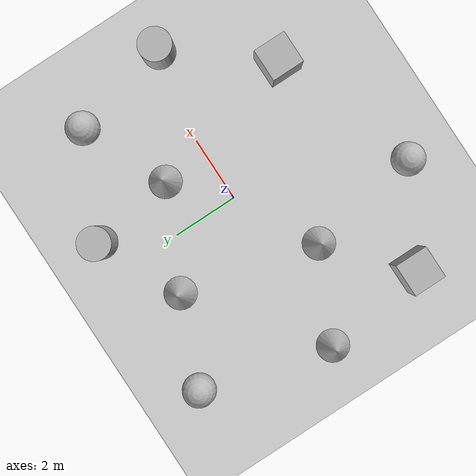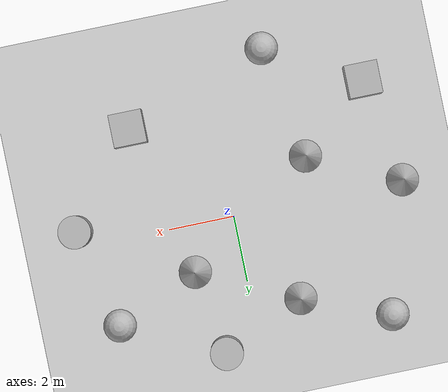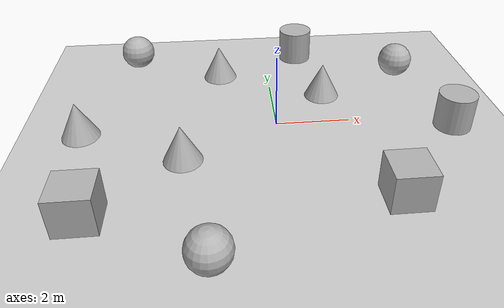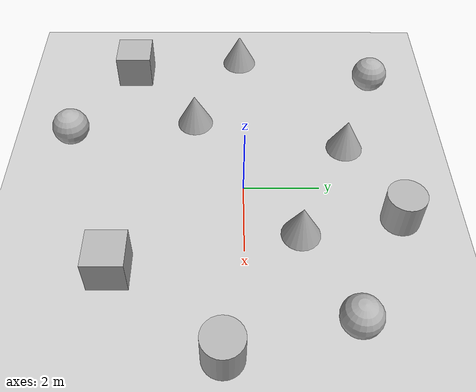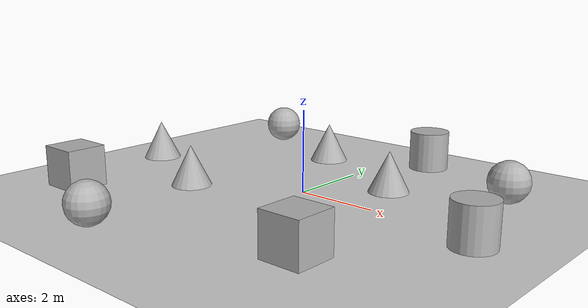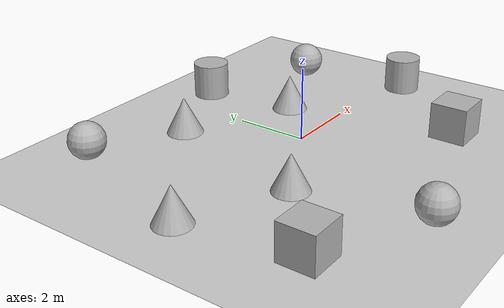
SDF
<?xml version="1.0"?>
<sdf version='1.10'>
  <world name='empty'>
    <physics name='1ms' type='ignored'>
      <max_step_size>0.001</max_step_size>
      <real_time_factor>1</real_time_factor>
      <real_time_update_rate>1000</real_time_update_rate>
    </physics>
    <plugin name='gz::sim::systems::Physics' filename='gz-sim-physics-system'/>
    <plugin name='gz::sim::systems::UserCommands' filename='gz-sim-user-commands-system'/>
    <plugin name='gz::sim::systems::SceneBroadcaster' filename='gz-sim-scene-broadcaster-system'/>
    <plugin name='gz::sim::systems::Contact' filename='gz-sim-contact-system'/>
    <plugin name='gz::sim::systems::Sensors' filename='gz-sim-sensors-system'>
      <render_engine>ogre2</render_engine>
    </plugin>
    <plugin name="gz::sim::systems::Imu" filename="gz-sim-imu-system" />
    <gravity>0 0 -9.8000000000000007</gravity>
    <magnetic_field>5.5644999999999998e-06 2.2875799999999999e-05 -4.2388400000000002e-05</magnetic_field>
    <atmosphere type='adiabatic'/>
    <scene>
      <ambient>0.400000006 0.400000006 0.400000006 1</ambient>
      <background>0.699999988 0.699999988 0.699999988 1</background>
      <shadows>true</shadows>
    </scene>
    <model name='ground_plane'>
      <static>true</static>
      <link name='link'>
        <collision name='collision'>
          <geometry>
            <plane>
              <normal>0 0 1</normal>
              <size>100 100</size>
            </plane>
          </geometry>
          <surface>
            <friction>
              <ode/>
            </friction>
            <bounce/>
            <contact/>
          </surface>
        </collision>
        <visual name='visual'>
          <geometry>
            <plane>
              <normal>0 0 1</normal>
              <size>100 100</size>
            </plane>
          </geometry>
          <material>
            <ambient>0.800000012 0.800000012 0.800000012 1</ambient>
            <diffuse>0.800000012 0.800000012 0.800000012 1</diffuse>
            <specular>0.800000012 0.800000012 0.800000012 1</specular>
          </material>
        </visual>
        <pose>0 0 0 0 0 0</pose>
        <inertial>
          <pose>0 0 0 0 0 0</pose>
          <mass>1</mass>
          <inertia>
            <ixx>1</ixx>
            <ixy>0</ixy>
            <ixz>0</ixz>
            <iyy>1</iyy>
            <iyz>0</iyz>
            <izz>1</izz>
          </inertia>
        </inertial>
        <enable_wind>false</enable_wind>
      </link>
      <pose>0 0 0 0 0 0</pose>
      <self_collide>false</self_collide>
    </model>
    <model name='cone_0'>
      <pose>1.4892225991940389 1.4110132482823996 0.5 0 0 0</pose>
      <link name='cone_link'>
        <inertial>
          <inertia>
            <ixx>0.074999999999999997</ixx>
            <ixy>0</ixy>
            <ixz>0</ixz>
            <iyy>0.074999999999999997</iyy>
            <iyz>0</iyz>
            <izz>0.074999999999999997</izz>
          </inertia>
          <mass>1</mass>
          <pose>0 0 0 0 0 0</pose>
        </inertial>
        <collision name='cone_collision'>
          <geometry>
            <cone>
              <radius>0.5</radius>
              <length>1</length>
            </cone>
          </geometry>
          <surface>
            <friction>
              <ode/>
            </friction>
            <bounce/>
            <contact/>
          </surface>
        </collision>
        <visual name='cone_visual'>
          <geometry>
            <cone>
              <radius>0.5</radius>
              <length>1</length>
            </cone>
          </geometry>
          <material>
            <ambient>0.300000012 0.300000012 0.300000012 1</ambient>
            <diffuse>0.699999988 0.699999988 0.699999988 1</diffuse>
            <specular>1 1 1 1</specular>
          </material>
        </visual>
        <pose>0 0 0 0 0 0</pose>
        <enable_wind>false</enable_wind>
      </link>
      <static>false</static>
      <self_collide>false</self_collide>
    </model>
    <model name='cylinder'>
      <pose>4.7533978697758705 -0.50476045100361344 0.5 0 0 0</pose>
      <link name='cylinder_link'>
        <inertial>
          <inertia>
            <ixx>0.14580000000000001</ixx>
            <ixy>0</ixy>
            <ixz>0</ixz>
            <iyy>0.14580000000000001</iyy>
            <iyz>0</iyz>
            <izz>0.125</izz>
          </inertia>
          <mass>1</mass>
          <pose>0 0 0 0 0 0</pose>
        </inertial>
        <collision name='cylinder_collision'>
          <geometry>
            <cylinder>
              <radius>0.5</radius>
              <length>1</length>
            </cylinder>
          </geometry>
          <surface>
            <friction>
              <ode/>
            </friction>
            <bounce/>
            <contact/>
          </surface>
        </collision>
        <visual name='cylinder_visual'>
          <geometry>
            <cylinder>
              <radius>0.5</radius>
              <length>1</length>
            </cylinder>
          </geometry>
          <material>
            <ambient>0.300000012 0.300000012 0.300000012 1</ambient>
            <diffuse>0.699999988 0.699999988 0.699999988 1</diffuse>
            <specular>1 1 1 1</specular>
          </material>
        </visual>
        <pose>0 0 0 0 0 0</pose>
        <enable_wind>false</enable_wind>
      </link>
      <static>false</static>
      <self_collide>false</self_collide>
    </model>
    <model name='box'>
      <pose>2.5788527549479463 -3.2161412418514304 0.5 0 0 0</pose>
      <link name='box_link'>
        <inertial>
          <inertia>
            <ixx>0.16666</ixx>
            <ixy>0</ixy>
            <ixz>0</ixz>
            <iyy>0.16666</iyy>
            <iyz>0</iyz>
            <izz>0.16666</izz>
          </inertia>
          <mass>1</mass>
          <pose>0 0 0 0 0 0</pose>
        </inertial>
        <collision name='box_collision'>
          <geometry>
            <box>
              <size>1 1 1</size>
            </box>
          </geometry>
          <surface>
            <friction>
              <ode/>
            </friction>
            <bounce/>
            <contact/>
          </surface>
        </collision>
        <visual name='box_visual'>
          <geometry>
            <box>
              <size>1 1 1</size>
            </box>
          </geometry>
          <material>
            <ambient>0.300000012 0.300000012 0.300000012 1</ambient>
            <diffuse>0.699999988 0.699999988 0.699999988 1</diffuse>
            <specular>1 1 1 1</specular>
          </material>
        </visual>
        <pose>0 0 0 0 0 0</pose>
        <enable_wind>false</enable_wind>
      </link>
      <static>false</static>
      <self_collide>false</self_collide>
    </model>
    <model name='cone_1'>
      <pose>-1.4729632290940655 2.8299608996442025 0.5 0 0 0</pose>
      <link name='cone_link'>
        <inertial>
          <inertia>
            <ixx>0.074999999999999997</ixx>
            <ixy>0</ixy>
            <ixz>0</ixz>
            <iyy>0.074999999999999997</iyy>
            <iyz>0</iyz>
            <izz>0.074999999999999997</izz>
          </inertia>
          <mass>1</mass>
          <pose>0 0 0 0 0 0</pose>
        </inertial>
        <collision name='cone_collision'>
          <geometry>
            <cone>
              <radius>0.5</radius>
              <length>1</length>
            </cone>
          </geometry>
          <surface>
            <friction>
              <ode/>
            </friction>
            <bounce/>
            <contact/>
          </surface>
        </collision>
        <visual name='cone_visual'>
          <geometry>
            <cone>
              <radius>0.5</radius>
              <length>1</length>
            </cone>
          </geometry>
          <material>
            <ambient>0.300000012 0.300000012 0.300000012 1</ambient>
            <diffuse>0.699999988 0.699999988 0.699999988 1</diffuse>
            <specular>1 1 1 1</specular>
          </material>
        </visual>
        <pose>0 0 0 0 0 0</pose>
        <enable_wind>false</enable_wind>
      </link>
      <static>false</static>
      <self_collide>false</self_collide>
    </model>
    <model name='cylinder_0'>
      <pose>1.0358530314582408 3.956710407944521 0.5 0 0 0</pose>
      <link name='cylinder_link'>
        <inertial>
          <inertia>
            <ixx>0.14580000000000001</ixx>
            <ixy>0</ixy>
            <ixz>0</ixz>
            <iyy>0.14580000000000001</iyy>
            <iyz>0</iyz>
            <izz>0.125</izz>
          </inertia>
          <mass>1</mass>
          <pose>0 0 0 0 0 0</pose>
        </inertial>
        <collision name='cylinder_collision'>
          <geometry>
            <cylinder>
              <radius>0.5</radius>
              <length>1</length>
            </cylinder>
          </geometry>
          <surface>
            <friction>
              <ode/>
            </friction>
            <bounce/>
            <contact/>
          </surface>
        </collision>
        <visual name='cylinder_visual'>
          <geometry>
            <cylinder>
              <radius>0.5</radius>
              <length>1</length>
            </cylinder>
          </geometry>
          <material>
            <ambient>0.300000012 0.300000012 0.300000012 1</ambient>
            <diffuse>0.699999988 0.699999988 0.699999988 1</diffuse>
            <specular>1 1 1 1</specular>
          </material>
        </visual>
        <pose>0 0 0 0 0 0</pose>
        <enable_wind>false</enable_wind>
      </link>
      <static>false</static>
      <self_collide>false</self_collide>
    </model>
    <model name='sphere'>
      <pose>4.0093762555568961 2.5139623369504136 0.5 0 0 0</pose>
      <link name='sphere_link'>
        <inertial>
          <inertia>
            <ixx>0.10000000000000001</ixx>
            <ixy>0</ixy>
            <ixz>0</ixz>
            <iyy>0.10000000000000001</iyy>
            <iyz>0</iyz>
            <izz>0.10000000000000001</izz>
          </inertia>
          <mass>1</mass>
          <pose>0 0 0 0 0 0</pose>
        </inertial>
        <collision name='sphere_collision'>
          <geometry>
            <sphere>
              <radius>0.5</radius>
            </sphere>
          </geometry>
          <surface>
            <friction>
              <ode/>
            </friction>
            <bounce/>
            <contact/>
          </surface>
        </collision>
        <visual name='sphere_visual'>
          <geometry>
            <sphere>
              <radius>0.5</radius>
            </sphere>
          </geometry>
          <material>
            <ambient>0.300000012 0.300000012 0.300000012 1</ambient>
            <diffuse>0.699999988 0.699999988 0.699999988 1</diffuse>
            <specular>1 1 1 1</specular>
          </material>
        </visual>
        <pose>0 0 0 0 0 0</pose>
        <enable_wind>false</enable_wind>
      </link>
      <static>false</static>
      <self_collide>false</self_collide>
    </model>
    <model name='sphere_0'>
      <pose>-1.8184964500784719 -4.7755457018767107 0.5 0 0 0</pose>
      <link name='sphere_link'>
        <inertial>
          <inertia>
            <ixx>0.10000000000000001</ixx>
            <ixy>0</ixy>
            <ixz>0</ixz>
            <iyy>0.10000000000000001</iyy>
            <iyz>0</iyz>
            <izz>0.10000000000000001</izz>
          </inertia>
          <mass>1</mass>
          <pose>0 0 0 0 0 0</pose>
        </inertial>
        <collision name='sphere_collision'>
          <geometry>
            <sphere>
              <radius>0.5</radius>
            </sphere>
          </geometry>
          <surface>
            <friction>
              <ode/>
            </friction>
            <bounce/>
            <contact/>
          </surface>
        </collision>
        <visual name='sphere_visual'>
          <geometry>
            <sphere>
              <radius>0.5</radius>
            </sphere>
          </geometry>
          <material>
            <ambient>0.300000012 0.300000012 0.300000012 1</ambient>
            <diffuse>0.699999988 0.699999988 0.699999988 1</diffuse>
            <specular>1 1 1 1</specular>
          </material>
        </visual>
        <pose>0 0 0 0 0 0</pose>
        <enable_wind>false</enable_wind>
      </link>
      <static>false</static>
      <self_collide>false</self_collide>
    </model>
    <model name='cone_2'>
      <pose>-5.2009088281344553 -0.057861801403633284 0.5 0 0 0</pose>
      <link name='cone_link'>
        <inertial>
          <inertia>
            <ixx>0.074999999999999997</ixx>
            <ixy>0</ixy>
            <ixz>0</ixz>
            <iyy>0.074999999999999997</iyy>
            <iyz>0</iyz>
            <izz>0.074999999999999997</izz>
          </inertia>
          <mass>1</mass>
          <pose>0 0 0 0 0 0</pose>
        </inertial>
        <collision name='cone_collision'>
          <geometry>
            <cone>
              <radius>0.5</radius>
              <length>1</length>
            </cone>
          </geometry>
          <surface>
            <friction>
              <ode/>
            </friction>
            <bounce/>
            <contact/>
          </surface>
        </collision>
        <visual name='cone_visual'>
          <geometry>
            <cone>
              <radius>0.5</radius>
              <length>1</length>
            </cone>
          </geometry>
          <material>
            <ambient>0.300000012 0.300000012 0.300000012 1</ambient>
            <diffuse>0.699999988 0.699999988 0.699999988 1</diffuse>
            <specular>1 1 1 1</specular>
          </material>
        </visual>
        <pose>0 0 0 0 0 0</pose>
        <enable_wind>false</enable_wind>
      </link>
      <static>false</static>
      <self_collide>false</self_collide>
    </model>
    <model name='sphere_1'>
      <pose>-4.0679332685200169 3.8314126410691602 0.5 0 0 0</pose>
      <link name='sphere_link'>
        <inertial>
          <inertia>
            <ixx>0.10000000000000001</ixx>
            <ixy>0</ixy>
            <ixz>0</ixz>
            <iyy>0.10000000000000001</iyy>
            <iyz>0</iyz>
            <izz>0.10000000000000001</izz>
          </inertia>
          <mass>1</mass>
          <pose>0 0 0 0 0 0</pose>
        </inertial>
        <collision name='sphere_collision'>
          <geometry>
            <sphere>
              <radius>0.5</radius>
            </sphere>
          </geometry>
          <surface>
            <friction>
              <ode/>
            </friction>
            <bounce/>
            <contact/>
          </surface>
        </collision>
        <visual name='sphere_visual'>
          <geometry>
            <sphere>
              <radius>0.5</radius>
            </sphere>
          </geometry>
          <material>
            <ambient>0.300000012 0.300000012 0.300000012 1</ambient>
            <diffuse>0.699999988 0.699999988 0.699999988 1</diffuse>
            <specular>1 1 1 1</specular>
          </material>
        </visual>
        <pose>0 0 0 0 0 0</pose>
        <enable_wind>false</enable_wind>
      </link>
      <static>false</static>
      <self_collide>false</self_collide>
    </model>
    <model name='box_0'>
      <pose>-4.6008222069259093 -3.2306169773737312 0.5 0 0 0</pose>
      <link name='box_link'>
        <inertial>
          <inertia>
            <ixx>0.16666</ixx>
            <ixy>0</ixy>
            <ixz>0</ixz>
            <iyy>0.16666</iyy>
            <iyz>0</iyz>
            <izz>0.16666</izz>
          </inertia>
          <mass>1</mass>
          <pose>0 0 0 0 0 0</pose>
        </inertial>
        <collision name='box_collision'>
          <geometry>
            <box>
              <size>1 1 1</size>
            </box>
          </geometry>
          <surface>
            <friction>
              <ode/>
            </friction>
            <bounce/>
            <contact/>
          </surface>
        </collision>
        <visual name='box_visual'>
          <geometry>
            <box>
              <size>1 1 1</size>
            </box>
          </geometry>
          <material>
            <ambient>0.300000012 0.300000012 0.300000012 1</ambient>
            <diffuse>0.699999988 0.699999988 0.699999988 1</diffuse>
            <specular>1 1 1 1</specular>
          </material>
        </visual>
        <pose>0 0 0 0 0 0</pose>
        <enable_wind>false</enable_wind>
      </link>
      <static>false</static>
      <self_collide>false</self_collide>
    </model>
    <model name='cone_3'>
      <pose>-2.4775798994115306 -1.3521498904451508 0.5 0 0 0</pose>
      <link name='cone_link'>
        <inertial>
          <inertia>
            <ixx>0.074999999999999997</ixx>
            <ixy>0</ixy>
            <ixz>0</ixz>
            <iyy>0.074999999999999997</iyy>
            <iyz>0</iyz>
            <izz>0.074999999999999997</izz>
          </inertia>
          <mass>1</mass>
          <pose>0 0 0 0 0 0</pose>
        </inertial>
        <collision name='cone_collision'>
          <geometry>
            <cone>
              <radius>0.5</radius>
              <length>1</length>
            </cone>
          </geometry>
          <surface>
            <friction>
              <ode/>
            </friction>
            <bounce/>
            <contact/>
          </surface>
        </collision>
        <visual name='cone_visual'>
          <geometry>
            <cone>
              <radius>0.5</radius>
              <length>1</length>
            </cone>
          </geometry>
          <material>
            <ambient>0.300000012 0.300000012 0.300000012 1</ambient>
            <diffuse>0.699999988 0.699999988 0.699999988 1</diffuse>
            <specular>1 1 1 1</specular>
          </material>
        </visual>
        <pose>0 0 0 0 0 0</pose>
        <enable_wind>false</enable_wind>
      </link>
      <static>false</static>
      <self_collide>false</self_collide>
    </model>
    <light name='sun' type='directional'>
      <pose>0 0 10 0 0 0</pose>
      <cast_shadows>true</cast_shadows>
      <intensity>1</intensity>
      <direction>-0.5 0.10000000000000001 -0.90000000000000002</direction>
      <diffuse>0.800000012 0.800000012 0.800000012 1</diffuse>
      <specular>0.200000003 0.200000003 0.200000003 1</specular>
      <attenuation>
        <range>1000</range>
        <linear>0.01</linear>
        <constant>0.90000000000000002</constant>
        <quadratic>0.001</quadratic>
      </attenuation>
      <spot>
        <inner_angle>0</inner_angle>
        <outer_angle>0</outer_angle>
        <falloff>0</falloff>
      </spot>
    </light>
  </world>
</sdf>
